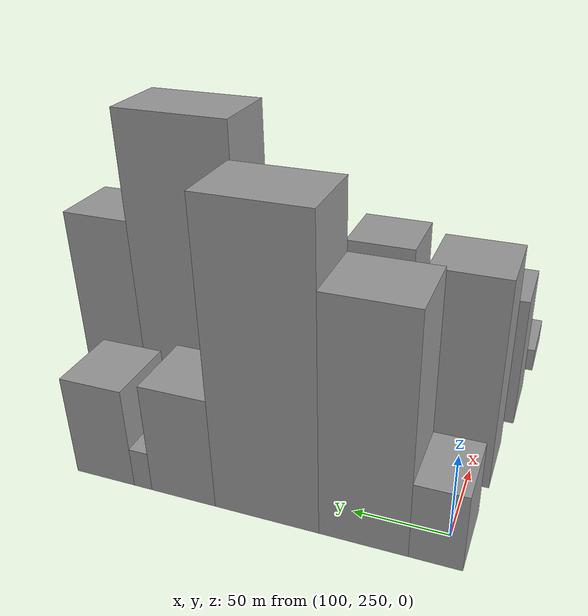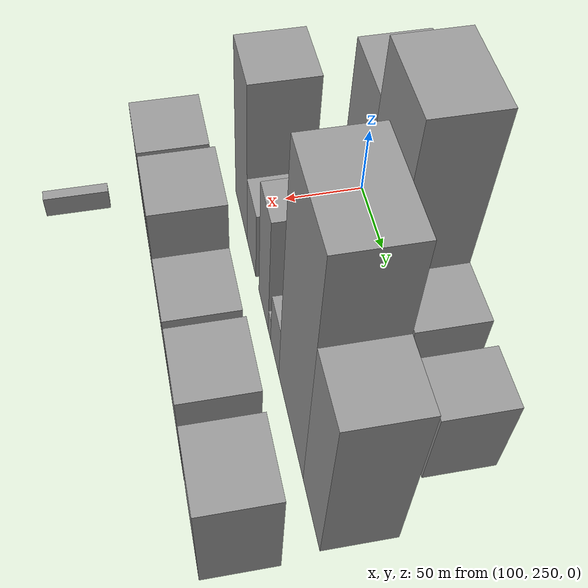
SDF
<sdf version="1.6">
 <world name="default">
  <model name="building_33">
   <static>1</static>
   <pose>100.0000 253.0568 0 0.000000 0.000000 0.000000</pose>
   <link name="link">
    <pose>0 0 22.50 0 0 0</pose>
    <collision name="collision"><geometry><box><size>40.0000 26.2116 45.0000</size></box></geometry></collision>
    <visual name="visual">
     <cast_shadows>0</cast_shadows>
     <geometry><box><size>40.0000 26.2116 45.0000</size></box></geometry>
     <material>
      <script>
       <uri>model://grey_wall/materials/scripts</uri>
       <uri>model://grey_wall/materials/textures</uri>
       <name>vrc/grey_wall</name>
      </script>
     </material>
    </visual>
   </link>
  </model>
  <model name="building_34">
   <static>1</static>
   <pose>100.0000 288.7687 0 0.000000 0.000000 0.000000</pose>
   <link name="link">
    <pose>0 0 67.50 0 0 0</pose>
    <collision name="collision"><geometry><box><size>40.0000 45.2121 135.0000</size></box></geometry></collision>
    <visual name="visual">
     <cast_shadows>0</cast_shadows>
     <geometry><box><size>40.0000 45.2121 135.0000</size></box></geometry>
     <material>
      <script>
       <uri>model://grey_wall/materials/scripts</uri>
       <uri>model://grey_wall/materials/textures</uri>
       <name>vrc/grey_wall</name>
      </script>
     </material>
    </visual>
   </link>
  </model>
  <model name="building_35">
   <static>1</static>
   <pose>100.0000 339.5329 0 0.000000 0.000000 0.000000</pose>
   <link name="link">
    <pose>0 0 85.50 0 0 0</pose>
    <collision name="collision"><geometry><box><size>40.0000 56.3162 171.0000</size></box></geometry></collision>
    <visual name="visual">
     <cast_shadows>0</cast_shadows>
     <geometry><box><size>40.0000 56.3162 171.0000</size></box></geometry>
     <material>
      <script>
       <uri>model://grey_wall/materials/scripts</uri>
       <uri>model://grey_wall/materials/textures</uri>
       <name>vrc/grey_wall</name>
      </script>
     </material>
    </visual>
   </link>
  </model>
  <model name="building_36">
   <static>1</static>
   <pose>100.0000 386.1106 0 0.000000 0.000000 0.000000</pose>
   <link name="link">
    <pose>0 0 33.00 0 0 0</pose>
    <collision name="collision"><geometry><box><size>40.0000 36.8392 66.0000</size></box></geometry></collision>
    <visual name="visual">
     <cast_shadows>0</cast_shadows>
     <geometry><box><size>40.0000 36.8392 66.0000</size></box></geometry>
     <material>
      <script>
       <uri>model://grey_wall/materials/scripts</uri>
       <uri>model://grey_wall/materials/textures</uri>
       <name>vrc/grey_wall</name>
      </script>
     </material>
    </visual>
   </link>
  </model>
  <model name="building_37">
   <static>1</static>
   <pose>100.0000 409.8533 0 0.000000 0.000000 0.000000</pose>
   <link name="link">
    <pose>0 0 12.00 0 0 0</pose>
    <collision name="collision"><geometry><box><size>40.0000 10.6462 24.0000</size></box></geometry></collision>
    <visual name="visual">
     <cast_shadows>0</cast_shadows>
     <geometry><box><size>40.0000 10.6462 24.0000</size></box></geometry>
     <material>
      <script>
       <uri>model://grey_wall/materials/scripts</uri>
       <uri>model://grey_wall/materials/textures</uri>
       <name>vrc/grey_wall</name>
      </script>
     </material>
    </visual>
   </link>
  </model>
  <model name="building_38">
   <static>1</static>
   <pose>100.0000 432.6948 0 0.000000 0.000000 0.000000</pose>
   <link name="link">
    <pose>0 0 30.00 0 0 0</pose>
    <collision name="collision"><geometry><box><size>40.0000 35.0368 60.0000</size></box></geometry></collision>
    <visual name="visual">
     <cast_shadows>0</cast_shadows>
     <geometry><box><size>40.0000 35.0368 60.0000</size></box></geometry>
     <material>
      <script>
       <uri>model://grey_wall/materials/scripts</uri>
       <uri>model://grey_wall/materials/textures</uri>
       <name>vrc/grey_wall</name>
      </script>
     </material>
    </visual>
   </link>
  </model>
  <model name="building_91">
   <static>1</static>
   <pose>160.0000 258.3663 0 0.000000 0.000000 0.000000</pose>
   <link name="link">
    <pose>0 0 61.50 0 0 0</pose>
    <collision name="collision"><geometry><box><size>40.0000 40.7160 123.0000</size></box></geometry></collision>
    <visual name="visual">
     <cast_shadows>0</cast_shadows>
     <geometry><box><size>40.0000 40.7160 123.0000</size></box></geometry>
     <material>
      <script>
       <uri>model://grey_wall/materials/scripts</uri>
       <uri>model://grey_wall/materials/textures</uri>
       <name>vrc/grey_wall</name>
      </script>
     </material>
    </visual>
   </link>
  </model>
  <model name="building_92">
   <static>1</static>
   <pose>160.0000 293.2890 0 0.000000 0.000000 0.000000</pose>
   <link name="link">
    <pose>0 0 27.00 0 0 0</pose>
    <collision name="collision"><geometry><box><size>40.0000 29.1294 54.0000</size></box></geometry></collision>
    <visual name="visual">
     <cast_shadows>0</cast_shadows>
     <geometry><box><size>40.0000 29.1294 54.0000</size></box></geometry>
     <material>
      <script>
       <uri>model://grey_wall/materials/scripts</uri>
       <uri>model://grey_wall/materials/textures</uri>
       <name>vrc/grey_wall</name>
      </script>
     </material>
    </visual>
   </link>
  </model>
  <model name="building_93">
   <static>1</static>
   <pose>160.0000 332.0252 0 0.000000 0.000000 0.000000</pose>
   <link name="link">
    <pose>0 0 46.50 0 0 0</pose>
    <collision name="collision"><geometry><box><size>40.0000 28.3429 93.0000</size></box></geometry></collision>
    <visual name="visual">
     <cast_shadows>0</cast_shadows>
     <geometry><box><size>40.0000 28.3429 93.0000</size></box></geometry>
     <material>
      <script>
       <uri>model://grey_wall/materials/scripts</uri>
       <uri>model://grey_wall/materials/textures</uri>
       <name>vrc/grey_wall</name>
      </script>
     </material>
    </visual>
   </link>
  </model>
  <model name="building_94">
   <static>1</static>
   <pose>160.0000 349.9171 0 0.000000 0.000000 0.000000</pose>
   <link name="link">
    <pose>0 0 9.00 0 0 0</pose>
    <collision name="collision"><geometry><box><size>40.0000 7.4411 18.0000</size></box></geometry></collision>
    <visual name="visual">
     <cast_shadows>0</cast_shadows>
     <geometry><box><size>40.0000 7.4411 18.0000</size></box></geometry>
     <material>
      <script>
       <uri>model://grey_wall/materials/scripts</uri>
       <uri>model://grey_wall/materials/textures</uri>
       <name>vrc/grey_wall</name>
      </script>
     </material>
    </visual>
   </link>
  </model>
  <model name="building_95">
   <static>1</static>
   <pose>160.0000 365.3472 0 0.000000 0.000000 0.000000</pose>
   <link name="link">
    <pose>0 0 21.00 0 0 0</pose>
    <collision name="collision"><geometry><box><size>40.0000 23.4192 42.0000</size></box></geometry></collision>
    <visual name="visual">
     <cast_shadows>0</cast_shadows>
     <geometry><box><size>40.0000 23.4192 42.0000</size></box></geometry>
     <material>
      <script>
       <uri>model://grey_wall/materials/scripts</uri>
       <uri>model://grey_wall/materials/textures</uri>
       <name>vrc/grey_wall</name>
      </script>
     </material>
    </visual>
   </link>
  </model>
  <model name="building_96">
   <static>1</static>
   <pose>160.0000 408.4842 0 0.000000 0.000000 0.000000</pose>
   <link name="link">
    <pose>0 0 91.50 0 0 0</pose>
    <collision name="collision"><geometry><box><size>40.0000 62.8548 183.0000</size></box></geometry></collision>
    <visual name="visual">
     <cast_shadows>0</cast_shadows>
     <geometry><box><size>40.0000 62.8548 183.0000</size></box></geometry>
     <material>
      <script>
       <uri>model://grey_wall/materials/scripts</uri>
       <uri>model://grey_wall/materials/textures</uri>
       <name>vrc/grey_wall</name>
      </script>
     </material>
    </visual>
   </link>
  </model>
  <model name="building_97">
   <static>1</static>
   <pose>160.0000 459.2124 0 0.000000 0.000000 0.000000</pose>
   <link name="link">
    <pose>0 0 61.50 0 0 0</pose>
    <collision name="collision"><geometry><box><size>40.0000 38.6016 123.0000</size></box></geometry></collision>
    <visual name="visual">
     <cast_shadows>0</cast_shadows>
     <geometry><box><size>40.0000 38.6016 123.0000</size></box></geometry>
     <material>
      <script>
       <uri>model://grey_wall/materials/scripts</uri>
       <uri>model://grey_wall/materials/textures</uri>
       <name>vrc/grey_wall</name>
      </script>
     </material>
    </visual>
   </link>
  </model>
  <model name="building_144">
   <static>1</static>
   <pose>220.0000 254.2177 0 0.000000 0.000000 0.000000</pose>
   <link name="link">
    <pose>0 0 40.50 0 0 0</pose>
    <collision name="collision"><geometry><box><size>40.0000 40.7852 81.0000</size></box></geometry></collision>
    <visual name="visual">
     <cast_shadows>0</cast_shadows>
     <geometry><box><size>40.0000 40.7852 81.0000</size></box></geometry>
     <material>
      <script>
       <uri>model://grey_wall/materials/scripts</uri>
       <uri>model://grey_wall/materials/textures</uri>
       <name>vrc/grey_wall</name>
      </script>
     </material>
    </visual>
   </link>
  </model>
  <model name="building_145">
   <static>1</static>
   <pose>220.0000 288.3154 0 0.000000 0.000000 0.000000</pose>
   <link name="link">
    <pose>0 0 10.50 0 0 0</pose>
    <collision name="collision"><geometry><box><size>40.0000 9.4103 21.0000</size></box></geometry></collision>
    <visual name="visual">
     <cast_shadows>0</cast_shadows>
     <geometry><box><size>40.0000 9.4103 21.0000</size></box></geometry>
     <material>
      <script>
       <uri>model://grey_wall/materials/scripts</uri>
       <uri>model://grey_wall/materials/textures</uri>
       <name>vrc/grey_wall</name>
      </script>
     </material>
    </visual>
   </link>
  </model>
  <model name="building_146">
   <static>1</static>
   <pose>220.0000 318.3101 0 0.000000 0.000000 0.000000</pose>
   <link name="link">
    <pose>0 0 51.00 0 0 0</pose>
    <collision name="collision"><geometry><box><size>40.0000 40.5791 102.0000</size></box></geometry></collision>
    <visual name="visual">
     <cast_shadows>0</cast_shadows>
     <geometry><box><size>40.0000 40.5791 102.0000</size></box></geometry>
     <material>
      <script>
       <uri>model://grey_wall/materials/scripts</uri>
       <uri>model://grey_wall/materials/textures</uri>
       <name>vrc/grey_wall</name>
      </script>
     </material>
    </visual>
   </link>
  </model>
  <model name="building_147">
   <static>1</static>
   <pose>220.0000 358.4478 0 0.000000 0.000000 0.000000</pose>
   <link name="link">
    <pose>0 0 34.50 0 0 0</pose>
    <collision name="collision"><geometry><box><size>40.0000 39.6963 69.0000</size></box></geometry></collision>
    <visual name="visual">
     <cast_shadows>0</cast_shadows>
     <geometry><box><size>40.0000 39.6963 69.0000</size></box></geometry>
     <material>
      <script>
       <uri>model://grey_wall/materials/scripts</uri>
       <uri>model://grey_wall/materials/textures</uri>
       <name>vrc/grey_wall</name>
      </script>
     </material>
    </visual>
   </link>
  </model>
  <model name="building_148">
   <static>1</static>
   <pose>220.0000 383.3438 0 0.000000 0.000000 0.000000</pose>
   <link name="link">
    <pose>0 0 10.50 0 0 0</pose>
    <collision name="collision"><geometry><box><size>40.0000 10.0958 21.0000</size></box></geometry></collision>
    <visual name="visual">
     <cast_shadows>0</cast_shadows>
     <geometry><box><size>40.0000 10.0958 21.0000</size></box></geometry>
     <material>
      <script>
       <uri>model://grey_wall/materials/scripts</uri>
       <uri>model://grey_wall/materials/textures</uri>
       <name>vrc/grey_wall</name>
      </script>
     </material>
    </visual>
   </link>
  </model>
  <model name="building_149">
   <static>1</static>
   <pose>220.0000 409.1304 0 0.000000 0.000000 0.000000</pose>
   <link name="link">
    <pose>0 0 39.00 0 0 0</pose>
    <collision name="collision"><geometry><box><size>40.0000 41.4775 78.0000</size></box></geometry></collision>
    <visual name="visual">
     <cast_shadows>0</cast_shadows>
     <geometry><box><size>40.0000 41.4775 78.0000</size></box></geometry>
     <material>
      <script>
       <uri>model://grey_wall/materials/scripts</uri>
       <uri>model://grey_wall/materials/textures</uri>
       <name>vrc/grey_wall</name>
      </script>
     </material>
    </visual>
   </link>
  </model>
  <model name="building_150">
   <static>1</static>
   <pose>220.0000 460.5148 0 0.000000 0.000000 0.000000</pose>
   <link name="link">
    <pose>0 0 37.50 0 0 0</pose>
    <collision name="collision"><geometry><box><size>40.0000 43.2913 75.0000</size></box></geometry></collision>
    <visual name="visual">
     <cast_shadows>0</cast_shadows>
     <geometry><box><size>40.0000 43.2913 75.0000</size></box></geometry>
     <material>
      <script>
       <uri>model://grey_wall/materials/scripts</uri>
       <uri>model://grey_wall/materials/textures</uri>
       <name>vrc/grey_wall</name>
      </script>
     </material>
    </visual>
   </link>
  </model>
  <model name="building_198">
   <static>1</static>
   <pose>280.0000 233.8836 0 0.000000 0.000000 0.000000</pose>
   <link name="link">
    <pose>0 0 7.50 0 0 0</pose>
    <collision name="collision"><geometry><box><size>40.0000 7.1765 15.0000</size></box></geometry></collision>
    <visual name="visual">
     <cast_shadows>0</cast_shadows>
     <geometry><box><size>40.0000 7.1765 15.0000</size></box></geometry>
     <material>
      <script>
       <uri>model://grey_wall/materials/scripts</uri>
       <uri>model://grey_wall/materials/textures</uri>
       <name>vrc/grey_wall</name>
      </script>
     </material>
    </visual>
   </link>
  </model>
 </world>
</sdf>
